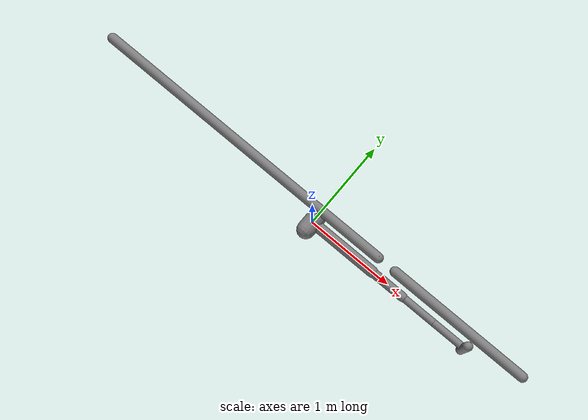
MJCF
<mujoco model="arm3d">
    <compiler inertiafromgeom="true" angle="radian" coordinate="local" />
    <option timestep="0.01" gravity="0 0 0" iterations="20" integrator="Euler" />

    <default>
        <joint armature='0.04' damping="1" limited="true"/>
        <geom friction=".8 .1 .1" density="1000" margin="0.002" condim="1" contype="1" conaffinity="1"/>
    </default>

    <worldbody>
        <body name="palm" pos="0 0 0">
            <geom type="capsule" fromto="0 -0.1 0 0 0.1 0" size="0.1"/>

            <body name="proximal_1" pos="0 0 0">
                <joint name="proximal_j_1" type="hinge" pos="0 0 0" axis="0 1 0" range="-2.5236 2.3963" damping="10.0" />
                <geom type="capsule" fromto="0 0 0 0.8 0 0" size="0.06" contype="1" conaffinity="1"/>
                <body name="distal_1" pos="0.8 0 0">
                    <joint name="distal_j_1" type="hinge" pos="0 0 0" axis="0 1 0" range="-2.3213 2.3" damping="1.0"/>
                    <geom type="capsule" fromto="0 0 0 0.4 0 0" size="0.05" contype="1" conaffinity="1"/>
                    <body name="distal_2" pos="0.4 0 0">
                        <joint name="distal_j_2" type="hinge" pos="0 0 0" axis="0 1 0" range="-2.3213 2.3" damping="1.0"/>
                        <geom type="capsule" fromto="0 0 0 0.4 0 0" size="0.04" contype="1" conaffinity="1"/>
                        <body name="distal_3" pos="0.4 0 0">
                            <joint name="distal_j_3" type="hinge" pos="0 0 0" axis="0 1 0" range="-2.3213 2.3" damping="1.0"/>
                            <geom type="capsule" fromto="0 0 0 0.4 0 0" size="0.04" contype="1" conaffinity="1"/>
                            <body name="distal_4" pos="0.4 0 0">
                                <site name="peg_bottom" pos="0 0 -0.3" size="0.01" />
                                <site name="peg_top" pos="0 0 0.3" size="0.01" />
                                <geom type="capsule" fromto="0 0 -0.3 0 0 0.3" size="0.05" contype="1" conaffinity="1"/>
                            </body>
                        </body>
                    </body>
                </body>
            </body>
        </body>
        <body name="goal" pos="0 0 1.1">
            <geom type="capsule" fromto="-2.5 0 0 0.8 0 0" size="0.05" contype="1" conaffinity="1"/>
            <geom type="capsule" fromto="1.0 0 0 2.5 0 0" size="0.05" contype="1" conaffinity="1"/>
        </body>
    </worldbody>

    <actuator>
        <motor joint="proximal_j_1" ctrlrange="-2 2" ctrllimited="true"/>
        <motor joint="distal_j_1" ctrlrange="-2 2" ctrllimited="true"/>
        <motor joint="distal_j_2" ctrlrange="-2 2" ctrllimited="true"/>
        <motor joint="distal_j_3" ctrlrange="-2 2" ctrllimited="true"/>
    </actuator>
</mujoco>
